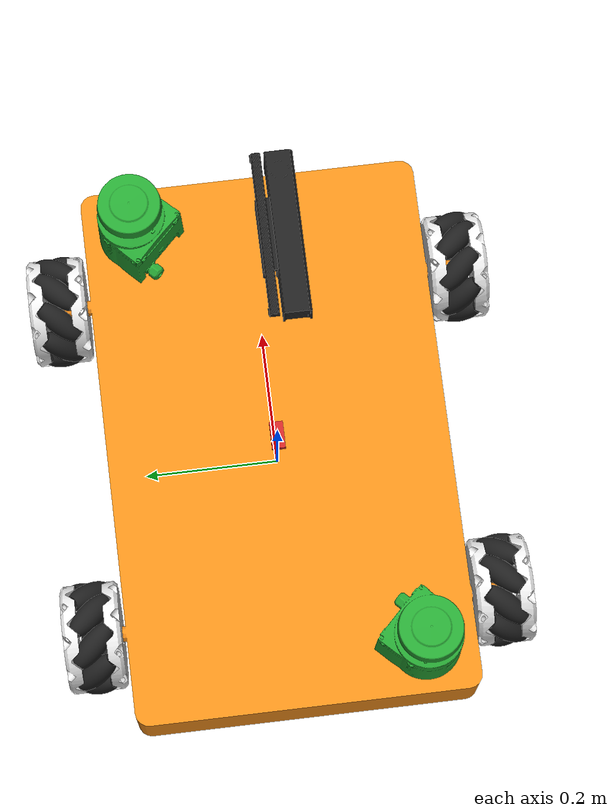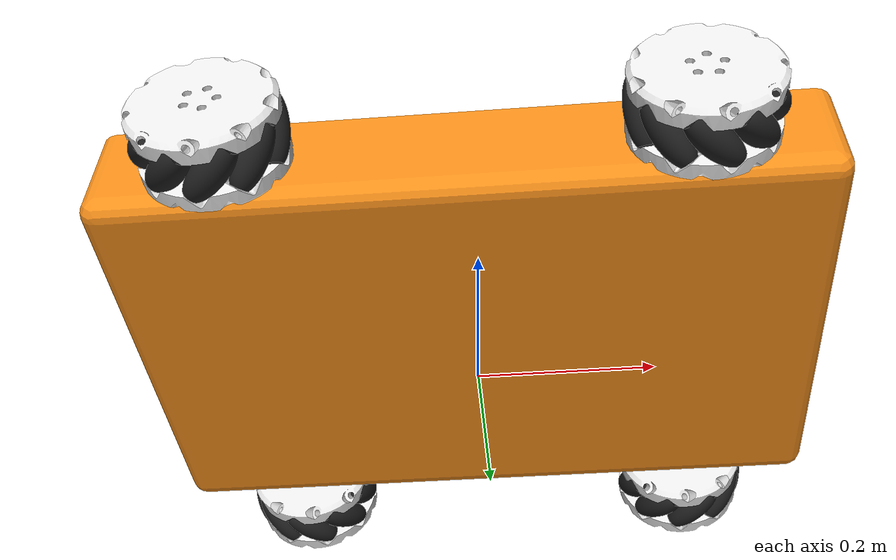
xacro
<?xml version="1.0"?>
<!-- Revolute-Revolute Manipulator -->
<robot name="zm_robot" xmlns:xacro="http://www.ros.org/wiki/xacro">

  <!-- Constants for robot dimensions -->
  <xacro:property name="wheel_rotationx" value="-1.5708"/>
  <xacro:property name="agv_base_h" value="0.081572" /> <!-- agv_base height -->
  <xacro:property name="wheel_before_L" value="0.25" /> <!-- wheel before L -->
  <xacro:property name="wheel_after_L" value="-0.25" /> <!-- wheel_after_L -->
  <xacro:property name="wheel_left_W" value="0.3" /> <!-- wheel left W -->
  <xacro:property name="wheel_right_W" value="-0.3" /> <!-- wheel right W -->

  <!-- roller position -->
  <xacro:property name="roller_1_y" value="0"/>
  <xacro:property name="roller_2_y" value="0.041781"/>
  <xacro:property name="roller_3_y" value="0.064012"/>
  <xacro:property name="roller_4_y" value="0.056291"/>
  <xacro:property name="roller_5_y" value="0.022231"/>
  <xacro:property name="roller_6_y" value="-0.022231"/>
  <xacro:property name="roller_7_y" value="-0.056291"/>
  <xacro:property name="roller_8_y" value="-0.064012"/>
  <xacro:property name="roller_9_y" value="-0.041781"/>
  <xacro:property name="roller_1_x" value="0.065"/>
  <xacro:property name="roller_2_x" value="0.049792"/>
  <xacro:property name="roller_3_x" value="0.011287"/>
  <xacro:property name="roller_4_x" value="-0.0325"/>
  <xacro:property name="roller_5_x" value="-0.06108"/>
  <xacro:property name="roller_6_x" value="-0.06108"/>
  <xacro:property name="roller_7_x" value="-0.0325"/>
  <xacro:property name="roller_8_x" value="0.011287"/>
  <xacro:property name="roller_9_x" value="0.049792"/>

  <!-- rollor friction -->
  <xacro:property name="roller_friction" value="0.4"/>
  <xacro:property name="roller_dampling" value="0"/>

  <!-- wheel friction -->
  <xacro:property name="roller_friction_wheel" value="0.2"/>
  <xacro:property name="roller_dampling_wheel" value="1.5"/>

  <!-- Import all Gazebo-customization elements, including Gazebo colors -->
  <xacro:include filename="$(find zm_robot_description)/urdf/zm_robot_pid.gazebo" />
  <!-- Import Rviz colors -->
  <xacro:include filename="$(find zm_robot_description)/urdf/materials.xacro" />
  <!-- Import rollor actuator -->
  <!--xacro:include filename="$(find zm_robot_description)/urdf/rollor_1.gazebo" /-->
  <!--xacro:include filename="$(find zm_robot_description)/urdf/rollor_2.gazebo" /-->
  <!--xacro:include filename="$(find zm_robot_description)/urdf/rollor_3.gazebo" /-->
  <!--xacro:include filename="$(find zm_robot_description)/urdf/rollor_4.gazebo" /-->

  <!-- Used for fixing robot to Gazebo 'base_link' -->
  <link name="base_footprint"/>

  <joint name="base_joint" type="fixed">
    <parent link="base_footprint"/>
    <child link="base_link"/>
    <origin xyz="0 0 ${agv_base_h}" rpy="0 0 0"/>
  </joint>

  <!-- Base Link -->
  <link name="base_link">
    <collision>
      <origin xyz="0 0 0" rpy="0 0 0"/>
      <geometry>
	<mesh filename="package://zm_robot_description/meshes/agv_base.stl" scale="0.01 0.01 0.01"/>
      </geometry>
    </collision>

    <visual>
      <origin xyz="0 0 0" rpy="0 0 0"/>
      <geometry>
	<mesh filename="package://zm_robot_description/meshes/agv_base.stl" scale="0.01 0.01 0.01"/>
      </geometry>
      <material name="orange"/>
    </visual>

    <inertial>
      <origin xyz="0 0 0" rpy="0 0 0"/>
      <mass value="29.964"/>
      <inertia
	  ixx="0.892684320" ixy="0.0" ixz="0.0"
	  iyy="1.966612482" iyz="0.0"
	  izz="2.677227828"/>
    </inertial>
  </link>

  <!-- wheel 1 -->
  <joint name="wheel_joint1" type="continuous">
    <parent link="base_link"/>
    <child link="wheel_1"/>
    <origin xyz="${wheel_after_L} ${wheel_left_W} 0" rpy="${wheel_rotationx} 0 0"/>
    <axis xyz="0 0 1"/>
    <dynamics damping="${roller_dampling_wheel}" friction="${roller_friction_wheel}"/>
  </joint>

  <link name="wheel_1">
    <collision>
      <origin xyz="0 0 0" rpy="0 0 0"/>
      <geometry>
	<mesh filename="package://zm_robot_description/meshes/mecanum_left_after.stl" scale="0.01 0.01 0.01"/>
      </geometry>
    </collision>

    <visual>
      <origin xyz="0 0 0" rpy="0 0 0"/>
      <geometry>
	<mesh filename="package://zm_robot_description/meshes/mecanum_left_after.stl" scale="0.01 0.01 0.01"/>
      </geometry>
      <material name="white"/>
    </visual>

    <inertial>
      <origin xyz="0 0 0" rpy="0 0 0"/>
      <mass value="1.7"/>
      <inertia
	  ixx="0.004248052" ixy="0.0" ixz="0.0"
	  iyy="0.004248045" iyz="0.0"
	  izz="0.004879970"/>
    </inertial>
  </link>

  <!-- roller_1_1 -->
  <joint name="roller_1_1_joint" type="fixed">
    <parent link="wheel_1"/>
    <child link="roller_1_1"/>
    <origin xyz="${roller_1_y} ${roller_1_x} 0" rpy="0.7854 0 1.5708"/>
    <axis xyz="0 0 1"/>
    <dynamics damping="${roller_dampling}" friction="${roller_friction}"/>
  </joint>

  <link name="roller_1_1">
    <collision>
      <origin xyz="0 0 0" rpy="0 0 0"/>
      <geometry>
	<mesh filename="package://zm_robot_description/meshes/mecanum_roller.stl" scale="0.01 0.01 0.01"/>
      </geometry>
    </collision>

    <visual>
      <origin xyz="0 0 0" rpy="0 0 0"/>
      <geometry>
	<mesh filename="package://zm_robot_description/meshes/mecanum_roller.stl" scale="0.01 0.01 0.01"/>
      </geometry>
      <material name="black"/>
    </visual>

    <inertial>
      <origin xyz="0 0 0" rpy="0 0 0"/>
      <mass value="0.124"/>
      <inertia
	  ixx="0.000051893" ixy="0.0" ixz="0.0"
	  iyy="0.000051893" iyz="0.0"
	  izz="0.000013891"/>
    </inertial>
  </link>

  <!-- roller_1_2 -->
  <joint name="roller_1_2_joint" type="fixed">
    <parent link="wheel_1"/>
    <child link="roller_1_2"/>
    <origin xyz="${roller_2_y} ${roller_2_x} 0" rpy="0.7854 0 0.8727"/>
    <axis xyz="0 0 1"/>
    <dynamics damping="${roller_dampling}" friction="${roller_friction}"/>
  </joint>

  <link name="roller_1_2">
    <collision>
      <origin xyz="0 0 0" rpy="0 0 0"/>
      <geometry>
	<mesh filename="package://zm_robot_description/meshes/mecanum_roller.stl" scale="0.01 0.01 0.01"/>
      </geometry>
    </collision>

    <visual>
      <origin xyz="0 0 0" rpy="0 0 0"/>
      <geometry>
	<mesh filename="package://zm_robot_description/meshes/mecanum_roller.stl" scale="0.01 0.01 0.01"/>
      </geometry>
      <material name="black"/>
    </visual>

    <inertial>
      <origin xyz="0 0 0" rpy="0 0 0"/>
      <mass value="0.124"/>
      <inertia
	  ixx="0.000051893" ixy="0.0" ixz="0.0"
	  iyy="0.000051893" iyz="0.0"
	  izz="0.000013891"/>
    </inertial>
  </link>

  <!-- roller_1_3 -->
  <joint name="roller_1_3_joint" type="fixed">
    <parent link="wheel_1"/>
    <child link="roller_1_3"/>
    <origin xyz="${roller_3_y} ${roller_3_x} 0" rpy="0.7854 0 0.1746"/>
    <axis xyz="0 0 1"/>
    <dynamics damping="${roller_dampling}" friction="${roller_friction}"/>
  </joint>

  <link name="roller_1_3">
    <collision>
      <origin xyz="0 0 0" rpy="0 0 0"/>
      <geometry>
	<mesh filename="package://zm_robot_description/meshes/mecanum_roller.stl" scale="0.01 0.01 0.01"/>
      </geometry>
    </collision>

    <visual>
      <origin xyz="0 0 0" rpy="0 0 0"/>
      <geometry>
	<mesh filename="package://zm_robot_description/meshes/mecanum_roller.stl" scale="0.01 0.01 0.01"/>
      </geometry>
      <material name="black"/>
    </visual>

    <inertial>
      <origin xyz="0 0 0" rpy="0 0 0"/>
      <mass value="0.124"/>
      <inertia
	  ixx="0.000051893" ixy="0.0" ixz="0.0"
	  iyy="0.000051893" iyz="0.0"
	  izz="0.000013891"/>
    </inertial>
  </link>

  <!-- roller_1_4 -->
  <joint name="roller_1_4_joint" type="fixed">
    <parent link="wheel_1"/>
    <child link="roller_1_4"/>
    <origin xyz="${roller_4_y} ${roller_4_x} 0" rpy="0.7854 0 -0.5235"/>
    <axis xyz="0 0 1"/>
    <dynamics damping="${roller_dampling}" friction="${roller_friction}"/>
  </joint>

  <link name="roller_1_4">
    <collision>
      <origin xyz="0 0 0" rpy="0 0 0"/>
      <geometry>
	<mesh filename="package://zm_robot_description/meshes/mecanum_roller.stl" scale="0.01 0.01 0.01"/>
      </geometry>
    </collision>

    <visual>
      <origin xyz="0 0 0" rpy="0 0 0"/>
      <geometry>
	<mesh filename="package://zm_robot_description/meshes/mecanum_roller.stl" scale="0.01 0.01 0.01"/>
      </geometry>
      <material name="black"/>
    </visual>

    <inertial>
      <origin xyz="0 0 0" rpy="0 0 0"/>
      <mass value="0.124"/>
      <inertia
	  ixx="0.000051893" ixy="0.0" ixz="0.0"
	  iyy="0.000051893" iyz="0.0"
	  izz="0.000013891"/>
    </inertial>
  </link>

  <!-- roller_1_5 -->
  <joint name="roller_1_5_joint" type="fixed">
    <parent link="wheel_1"/>
    <child link="roller_1_5"/>
    <origin xyz="${roller_5_y} ${roller_5_x} 0" rpy="0.7854 0 -1.2216"/>
    <axis xyz="0 0 1"/>
    <dynamics damping="${roller_dampling}" friction="${roller_friction}"/>
  </joint>

  <link name="roller_1_5">
    <collision>
      <origin xyz="0 0 0" rpy="0 0 0"/>
      <geometry>
	<mesh filename="package://zm_robot_description/meshes/mecanum_roller.stl" scale="0.01 0.01 0.01"/>
      </geometry>
    </collision>

    <visual>
      <origin xyz="0 0 0" rpy="0 0 0"/>
      <geometry>
	<mesh filename="package://zm_robot_description/meshes/mecanum_roller.stl" scale="0.01 0.01 0.01"/>
      </geometry>
      <material name="black"/>
    </visual>

    <inertial>
      <origin xyz="0 0 0" rpy="0 0 0"/>
      <mass value="0.124"/>
      <inertia
	  ixx="0.000051893" ixy="0.0" ixz="0.0"
	  iyy="0.000051893" iyz="0.0"
	  izz="0.000013891"/>
    </inertial>
  </link>

  <!-- roller_1_6 -->
  <joint name="roller_1_6_joint" type="fixed">
    <parent link="wheel_1"/>
    <child link="roller_1_6"/>
    <origin xyz="${roller_6_y} ${roller_6_x} 0" rpy="0.7854 0 4.3632"/>
    <axis xyz="0 0 1"/>
    <dynamics damping="${roller_dampling}" friction="${roller_friction}"/>
  </joint>

  <link name="roller_1_6">
    <collision>
      <origin xyz="0 0 0" rpy="0 0 0"/>
      <geometry>
	<mesh filename="package://zm_robot_description/meshes/mecanum_roller.stl" scale="0.01 0.01 0.01"/>
      </geometry>
    </collision>

    <visual>
      <origin xyz="0 0 0" rpy="0 0 0"/>
      <geometry>
	<mesh filename="package://zm_robot_description/meshes/mecanum_roller.stl" scale="0.01 0.01 0.01"/>
      </geometry>
      <material name="black"/>
    </visual>

    <inertial>
      <origin xyz="0 0 0" rpy="0 0 0"/>
      <mass value="0.124"/>
      <inertia
	  ixx="0.000051893" ixy="0.0" ixz="0.0"
	  iyy="0.000051893" iyz="0.0"
	  izz="0.000013891"/>
    </inertial>
  </link>

  <!-- roller_1_7 -->
  <joint name="roller_1_7_joint" type="fixed">
    <parent link="wheel_1"/>
    <child link="roller_1_7"/>
    <origin xyz="${roller_7_y} ${roller_7_x} 0" rpy="0.7854 0 3.6651"/>
    <axis xyz="0 0 1"/>
    <dynamics damping="${roller_dampling}" friction="${roller_friction}"/>
  </joint>

  <link name="roller_1_7">
    <collision>
      <origin xyz="0 0 0" rpy="0 0 0"/>
      <geometry>
	<mesh filename="package://zm_robot_description/meshes/mecanum_roller.stl" scale="0.01 0.01 0.01"/>
      </geometry>
    </collision>

    <visual>
      <origin xyz="0 0 0" rpy="0 0 0"/>
      <geometry>
	<mesh filename="package://zm_robot_description/meshes/mecanum_roller.stl" scale="0.01 0.01 0.01"/>
      </geometry>
      <material name="black"/>
    </visual>

    <inertial>
      <origin xyz="0 0 0" rpy="0 0 0"/>
      <mass value="0.124"/>
      <inertia
	  ixx="0.000051893" ixy="0.0" ixz="0.0"
	  iyy="0.000051893" iyz="0.0"
	  izz="0.000013891"/>
    </inertial>
  </link>

  <!-- roller_1_8 -->
  <joint name="roller_1_8_joint" type="fixed">
    <parent link="wheel_1"/>
    <child link="roller_1_8"/>
    <origin xyz="${roller_8_y} ${roller_8_x} 0" rpy="0.7854 0 2.967"/>
    <axis xyz="0 0 1"/>
    <dynamics damping="${roller_dampling}" friction="${roller_friction}"/>
  </joint>

  <link name="roller_1_8">
    <collision>
      <origin xyz="0 0 0" rpy="0 0 0"/>
      <geometry>
	<mesh filename="package://zm_robot_description/meshes/mecanum_roller.stl" scale="0.01 0.01 0.01"/>
      </geometry>
    </collision>

    <visual>
      <origin xyz="0 0 0" rpy="0 0 0"/>
      <geometry>
	<mesh filename="package://zm_robot_description/meshes/mecanum_roller.stl" scale="0.01 0.01 0.01"/>
      </geometry>
      <material name="black"/>
    </visual>

    <inertial>
      <origin xyz="0 0 0" rpy="0 0 0"/>
      <mass value="0.124"/>
      <inertia
	  ixx="0.000051893" ixy="0.0" ixz="0.0"
	  iyy="0.000051893" iyz="0.0"
	  izz="0.000013891"/>
    </inertial>
  </link>

  <!-- roller_1_9 -->
  <joint name="roller_1_9_joint" type="fixed">
    <parent link="wheel_1"/>
    <child link="roller_1_9"/>
    <origin xyz="${roller_9_y} ${roller_9_x} 0" rpy="0.7854 0 2.2689"/>
    <axis xyz="0 0 1"/>
    <dynamics damping="${roller_dampling}" friction="${roller_friction}"/>
  </joint>

  <link name="roller_1_9">
    <collision>
      <origin xyz="0 0 0" rpy="0 0 0"/>
      <geometry>
	<mesh filename="package://zm_robot_description/meshes/mecanum_roller.stl" scale="0.01 0.01 0.01"/>
      </geometry>
    </collision>

    <visual>
      <origin xyz="0 0 0" rpy="0 0 0"/>
      <geometry>
	<mesh filename="package://zm_robot_description/meshes/mecanum_roller.stl" scale="0.01 0.01 0.01"/>
      </geometry>
      <material name="black"/>
    </visual>

    <inertial>
      <origin xyz="0 0 0" rpy="0 0 0"/>
      <mass value="0.124"/>
      <inertia
	  ixx="0.000051893" ixy="0.0" ixz="0.0"
	  iyy="0.000051893" iyz="0.0"
	  izz="0.000013891"/>
    </inertial>
  </link>

  <!-- wheel 2 -->
  <joint name="wheel_joint2" type="continuous">
    <parent link="base_link"/>
    <child link="wheel_2"/>
    <origin xyz="${wheel_before_L} ${wheel_left_W} 0" rpy="${wheel_rotationx} 0 0"/>
    <axis xyz="0 0 1"/>
    <dynamics damping="${roller_dampling_wheel}" friction="${roller_friction_wheel}"/>
  </joint>

  <link name="wheel_2">
    <collision>
      <origin xyz="0 0 0" rpy="0 0 0"/>
      <geometry>
	<mesh filename="package://zm_robot_description/meshes/mecanum_left_before.stl" scale="0.01 0.01 0.01"/>
      </geometry>
    </collision>

    <visual>
      <origin xyz="0 0 0" rpy="0 0 0"/>
      <geometry>
	<mesh filename="package://zm_robot_description/meshes/mecanum_left_before.stl" scale="0.01 0.01 0.01"/>
      </geometry>
      <material name="white"/>
    </visual>

    <inertial>
      <origin xyz="0 0 0" rpy="0 0 0"/>
      <mass value="1.7"/>
      <inertia
	  ixx="0.004248052" ixy="0.0" ixz="0.0"
	  iyy="0.004248045" iyz="0.0"
	  izz="0.004879970"/>
    </inertial>
  </link>

  <!-- roller_2_1 -->
  <joint name="roller_2_1_joint" type="fixed">
    <parent link="wheel_2"/>
    <child link="roller_2_1"/>
    <origin xyz="${roller_1_x} ${roller_1_y} 0" rpy="-0.7854 0 0"/>
    <axis xyz="0 0 1"/>
    <dynamics damping="${roller_dampling}" friction="${roller_friction}"/>
  </joint>

  <link name="roller_2_1">
    <collision>
      <origin xyz="0 0 0" rpy="0 0 0"/>
      <geometry>
	<mesh filename="package://zm_robot_description/meshes/mecanum_roller.stl" scale="0.01 0.01 0.01"/>
      </geometry>
    </collision>

    <visual>
      <origin xyz="0 0 0" rpy="0 0 0"/>
      <geometry>
	<mesh filename="package://zm_robot_description/meshes/mecanum_roller.stl" scale="0.01 0.01 0.01"/>
      </geometry>
      <material name="black"/>
    </visual>

    <inertial>
      <origin xyz="0 0 0" rpy="0 0 0"/>
      <mass value="0.124"/>
      <inertia
	  ixx="0.000051893" ixy="0.0" ixz="0.0"
	  iyy="0.000051893" iyz="0.0"
	  izz="0.000013891"/>
    </inertial>
  </link>

  <!-- roller_2_2 -->
  <joint name="roller_2_2_joint" type="fixed">
    <parent link="wheel_2"/>
    <child link="roller_2_2"/>
    <origin xyz="${roller_2_x} ${roller_2_y} 0" rpy="-0.7854 0 0.6981"/>
    <axis xyz="0 0 1"/>
    <dynamics damping="${roller_dampling}" friction="${roller_friction}"/>
  </joint>

  <link name="roller_2_2">
    <collision>
      <origin xyz="0 0 0" rpy="0 0 0"/>
      <geometry>
	<mesh filename="package://zm_robot_description/meshes/mecanum_roller.stl" scale="0.01 0.01 0.01"/>
      </geometry>
    </collision>

    <visual>
      <origin xyz="0 0 0" rpy="0 0 0"/>
      <geometry>
	<mesh filename="package://zm_robot_description/meshes/mecanum_roller.stl" scale="0.01 0.01 0.01"/>
      </geometry>
      <material name="black"/>
    </visual>

    <inertial>
      <origin xyz="0 0 0" rpy="0 0 0"/>
      <mass value="0.124"/>
      <inertia
	  ixx="0.000051893" ixy="0.0" ixz="0.0"
	  iyy="0.000051893" iyz="0.0"
	  izz="0.000013891"/>
    </inertial>
  </link>

  <!-- roller_2_3 -->
  <joint name="roller_2_3_joint" type="fixed">
    <parent link="wheel_2"/>
    <child link="roller_2_3"/>
    <origin xyz="${roller_3_x} ${roller_3_y} 0" rpy="-0.7854 0 1.3962"/>
    <axis xyz="0 0 1"/>
    <dynamics damping="${roller_dampling}" friction="${roller_friction}"/>
  </joint>

  <link name="roller_2_3">
    <collision>
      <origin xyz="0 0 0" rpy="0 0 0"/>
      <geometry>
	<mesh filename="package://zm_robot_description/meshes/mecanum_roller.stl" scale="0.01 0.01 0.01"/>
      </geometry>
    </collision>

    <visual>
      <origin xyz="0 0 0" rpy="0 0 0"/>
      <geometry>
	<mesh filename="package://zm_robot_description/meshes/mecanum_roller.stl" scale="0.01 0.01 0.01"/>
      </geometry>
      <material name="black"/>
    </visual>

    <inertial>
      <origin xyz="0 0 0" rpy="0 0 0"/>
      <mass value="0.124"/>
      <inertia
	  ixx="0.000051893" ixy="0.0" ixz="0.0"
	  iyy="0.000051893" iyz="0.0"
	  izz="0.000013891"/>
    </inertial>
  </link>

  <!-- roller_2_4 -->
  <joint name="roller_2_4_joint" type="fixed">
    <parent link="wheel_2"/>
    <child link="roller_2_4"/>
    <origin xyz="${roller_4_x} ${roller_4_y} 0" rpy="-0.7854 0 2.0943"/>
    <axis xyz="0 0 1"/>
    <dynamics damping="${roller_dampling}" friction="${roller_friction}"/>
  </joint>

  <link name="roller_2_4">
    <collision>
      <origin xyz="0 0 0" rpy="0 0 0"/>
      <geometry>
	<mesh filename="package://zm_robot_description/meshes/mecanum_roller.stl" scale="0.01 0.01 0.01"/>
      </geometry>
    </collision>

    <visual>
      <origin xyz="0 0 0" rpy="0 0 0"/>
      <geometry>
	<mesh filename="package://zm_robot_description/meshes/mecanum_roller.stl" scale="0.01 0.01 0.01"/>
      </geometry>
      <material name="black"/>
    </visual>

    <inertial>
      <origin xyz="0 0 0" rpy="0 0 0"/>
      <mass value="0.124"/>
      <inertia
	  ixx="0.000051893" ixy="0.0" ixz="0.0"
	  iyy="0.000051893" iyz="0.0"
	  izz="0.000013891"/>
    </inertial>
  </link>

  <!-- roller_2_5 -->
  <joint name="roller_2_5_joint" type="fixed">
    <parent link="wheel_2"/>
    <child link="roller_2_5"/>
    <origin xyz="${roller_5_x} ${roller_5_y} 0" rpy="-0.7854 0 2.7924"/>
    <axis xyz="0 0 1"/>
    <dynamics damping="${roller_dampling}" friction="${roller_friction}"/>
  </joint>

  <link name="roller_2_5">
    <collision>
      <origin xyz="0 0 0" rpy="0 0 0"/>
      <geometry>
	<mesh filename="package://zm_robot_description/meshes/mecanum_roller.stl" scale="0.01 0.01 0.01"/>
      </geometry>
    </collision>

    <visual>
      <origin xyz="0 0 0" rpy="0 0 0"/>
      <geometry>
	<mesh filename="package://zm_robot_description/meshes/mecanum_roller.stl" scale="0.01 0.01 0.01"/>
      </geometry>
      <material name="black"/>
    </visual>

    <inertial>
      <origin xyz="0 0 0" rpy="0 0 0"/>
      <mass value="0.124"/>
      <inertia
	  ixx="0.000051893" ixy="0.0" ixz="0.0"
	  iyy="0.000051893" iyz="0.0"
	  izz="0.000013891"/>
    </inertial>
  </link>

  <!-- roller_2_6 -->
  <joint name="roller_2_6_joint" type="fixed">
    <parent link="wheel_2"/>
    <child link="roller_2_6"/>
    <origin xyz="${roller_6_x} ${roller_6_y} 0" rpy="-0.7854 0 -2.7924"/>
    <axis xyz="0 0 1"/>
    <dynamics damping="${roller_dampling}" friction="${roller_friction}"/>
  </joint>

  <link name="roller_2_6">
    <collision>
      <origin xyz="0 0 0" rpy="0 0 0"/>
      <geometry>
	<mesh filename="package://zm_robot_description/meshes/mecanum_roller.stl" scale="0.01 0.01 0.01"/>
      </geometry>
    </collision>

    <visual>
      <origin xyz="0 0 0" rpy="0 0 0"/>
      <geometry>
	<mesh filename="package://zm_robot_description/meshes/mecanum_roller.stl" scale="0.01 0.01 0.01"/>
      </geometry>
      <material name="black"/>
    </visual>

    <inertial>
      <origin xyz="0 0 0" rpy="0 0 0"/>
      <mass value="0.124"/>
      <inertia
	  ixx="0.000051893" ixy="0.0" ixz="0.0"
	  iyy="0.000051893" iyz="0.0"
	  izz="0.000013891"/>
    </inertial>
  </link>

  <!-- roller_2_7 -->
  <joint name="roller_2_7_joint" type="fixed">
    <parent link="wheel_2"/>
    <child link="roller_2_7"/>
    <origin xyz="${roller_7_x} ${roller_7_y} 0" rpy="-0.7854 0 -2.0943"/>
    <axis xyz="0 0 1"/>
    <dynamics damping="${roller_dampling}" friction="${roller_friction}"/>
  </joint>

  <link name="roller_2_7">
    <collision>
      <origin xyz="0 0 0" rpy="0 0 0"/>
      <geometry>
	<mesh filename="package://zm_robot_description/meshes/mecanum_roller.stl" scale="0.01 0.01 0.01"/>
      </geometry>
    </collision>

    <visual>
      <origin xyz="0 0 0" rpy="0 0 0"/>
      <geometry>
	<mesh filename="package://zm_robot_description/meshes/mecanum_roller.stl" scale="0.01 0.01 0.01"/>
      </geometry>
      <material name="black"/>
    </visual>

    <inertial>
      <origin xyz="0 0 0" rpy="0 0 0"/>
      <mass value="0.124"/>
      <inertia
	  ixx="0.000051893" ixy="0.0" ixz="0.0"
	  iyy="0.000051893" iyz="0.0"
	  izz="0.000013891"/>
    </inertial>
  </link>

  <!-- roller_2_8 -->
  <joint name="roller_2_8_joint" type="fixed">
    <parent link="wheel_2"/>
    <child link="roller_2_8"/>
    <origin xyz="${roller_8_x} ${roller_8_y} 0" rpy="-0.7854 0 -1.3962"/>
    <axis xyz="0 0 1"/>
    <dynamics damping="${roller_dampling}" friction="${roller_friction}"/>
  </joint>

  <link name="roller_2_8">
    <collision>
      <origin xyz="0 0 0" rpy="0 0 0"/>
      <geometry>
	<mesh filename="package://zm_robot_description/meshes/mecanum_roller.stl" scale="0.01 0.01 0.01"/>
      </geometry>
    </collision>

    <visual>
      <origin xyz="0 0 0" rpy="0 0 0"/>
      <geometry>
	<mesh filename="package://zm_robot_description/meshes/mecanum_roller.stl" scale="0.01 0.01 0.01"/>
      </geometry>
      <material name="black"/>
    </visual>

    <inertial>
      <origin xyz="0 0 0" rpy="0 0 0"/>
      <mass value="0.124"/>
      <inertia
	  ixx="0.000051893" ixy="0.0" ixz="0.0"
	  iyy="0.000051893" iyz="0.0"
	  izz="0.000013891"/>
    </inertial>
  </link>

  <!-- roller_2_9 -->
  <joint name="roller_2_9_joint" type="fixed">
    <parent link="wheel_2"/>
    <child link="roller_2_9"/>
    <origin xyz="${roller_9_x} ${roller_9_y} 0" rpy="-0.7854 0 -0.6981"/>
    <axis xyz="0 0 1"/>
    <dynamics damping="${roller_dampling}" friction="${roller_friction}"/>
  </joint>

  <link name="roller_2_9">
    <collision>
      <origin xyz="0 0 0" rpy="0 0 0"/>
      <geometry>
	<mesh filename="package://zm_robot_description/meshes/mecanum_roller.stl" scale="0.01 0.01 0.01"/>
      </geometry>
    </collision>

    <visual>
      <origin xyz="0 0 0" rpy="0 0 0"/>
      <geometry>
	<mesh filename="package://zm_robot_description/meshes/mecanum_roller.stl" scale="0.01 0.01 0.01"/>
      </geometry>
      <material name="black"/>
    </visual>

    <inertial>
      <origin xyz="0 0 0" rpy="0 0 0"/>
      <mass value="0.124"/>
      <inertia
	  ixx="0.000051893" ixy="0.0" ixz="0.0"
	  iyy="0.000051893" iyz="0.0"
	  izz="0.000013891"/>
    </inertial>
  </link>

  <!-- wheel 3 -->
  <joint name="wheel_joint3" type="continuous">
    <parent link="base_link"/>
    <child link="wheel_3"/>
    <origin xyz="${wheel_before_L} ${wheel_right_W} 0" rpy="${wheel_rotationx} 0 0"/>
    <axis xyz="0 0 1"/>
    <dynamics damping="${roller_dampling_wheel}" friction="${roller_friction_wheel}"/>
  </joint>

  <link name="wheel_3">
    <collision>
      <origin xyz="0 0 0" rpy="0 0 0"/>
      <geometry>
	<mesh filename="package://zm_robot_description/meshes/mecanum_right_before.stl" scale="0.01 0.01 0.01"/>
      </geometry>
    </collision>

    <visual>
      <origin xyz="0 0 0" rpy="0 0 0"/>
      <geometry>
	<mesh filename="package://zm_robot_description/meshes/mecanum_right_before.stl" scale="0.01 0.01 0.01"/>
      </geometry>
      <material name="white"/>
    </visual>

    <inertial>
      <origin xyz="0 0 0" rpy="0 0 0"/>
      <mass value="1.7"/>
      <inertia
	  ixx="0.004248052" ixy="0.0" ixz="0.0"
	  iyy="0.004248045" iyz="0.0"
	  izz="0.004879970"/>
    </inertial>
  </link>

  <!-- roller_3_1 -->
  <joint name="roller_3_1_joint" type="fixed">
    <parent link="wheel_3"/>
    <child link="roller_3_1"/>
    <origin xyz="${roller_1_y} ${roller_1_x} 0" rpy="0.7854 0 1.5708"/>
    <axis xyz="0 0 1"/>
    <dynamics damping="${roller_dampling}" friction="${roller_friction}"/>
  </joint>

  <link name="roller_3_1">
    <collision>
      <origin xyz="0 0 0" rpy="0 0 0"/>
      <geometry>
	<mesh filename="package://zm_robot_description/meshes/mecanum_roller.stl" scale="0.01 0.01 0.01"/>
      </geometry>
    </collision>

    <visual>
      <origin xyz="0 0 0" rpy="0 0 0"/>
      <geometry>
	<mesh filename="package://zm_robot_description/meshes/mecanum_roller.stl" scale="0.01 0.01 0.01"/>
      </geometry>
      <material name="black"/>
    </visual>

    <inertial>
      <origin xyz="0 0 0" rpy="0 0 0"/>
      <mass value="0.124"/>
      <inertia
	  ixx="0.000051893" ixy="0.0" ixz="0.0"
	  iyy="0.000051893" iyz="0.0"
	  izz="0.000013891"/>
    </inertial>
  </link>

  <!-- roller_3_2 -->
  <joint name="roller_3_2_joint" type="fixed">
    <parent link="wheel_3"/>
    <child link="roller_3_2"/>
    <origin xyz="${roller_2_y} ${roller_2_x} 0" rpy="0.7854 0 0.8727"/>
    <axis xyz="0 0 1"/>
    <dynamics damping="${roller_dampling}" friction="${roller_friction}"/>
  </joint>

  <link name="roller_3_2">
    <collision>
      <origin xyz="0 0 0" rpy="0 0 0"/>
      <geometry>
	<mesh filename="package://zm_robot_description/meshes/mecanum_roller.stl" scale="0.01 0.01 0.01"/>
      </geometry>
    </collision>

    <visual>
      <origin xyz="0 0 0" rpy="0 0 0"/>
      <geometry>
	<mesh filename="package://zm_robot_description/meshes/mecanum_roller.stl" scale="0.01 0.01 0.01"/>
      </geometry>
      <material name="black"/>
    </visual>

    <inertial>
      <origin xyz="0 0 0" rpy="0 0 0"/>
      <mass value="0.124"/>
      <inertia
	  ixx="0.000051893" ixy="0.0" ixz="0.0"
	  iyy="0.000051893" iyz="0.0"
	  izz="0.000013891"/>
    </inertial>
  </link>

  <!-- roller_3_3 -->
  <joint name="roller_3_3_joint" type="fixed">
    <parent link="wheel_3"/>
    <child link="roller_3_3"/>
    <origin xyz="${roller_3_y} ${roller_3_x} 0" rpy="0.7854 0 0.1746"/>
    <axis xyz="0 0 1"/>
    <dynamics damping="${roller_dampling}" friction="${roller_friction}"/>
  </joint>

  <link name="roller_3_3">
    <collision>
      <origin xyz="0 0 0" rpy="0 0 0"/>
      <geometry>
	<mesh filename="package://zm_robot_description/meshes/mecanum_roller.stl" scale="0.01 0.01 0.01"/>
      </geometry>
    </collision>

    <visual>
      <origin xyz="0 0 0" rpy="0 0 0"/>
      <geometry>
	<mesh filename="package://zm_robot_description/meshes/mecanum_roller.stl" scale="0.01 0.01 0.01"/>
      </geometry>
      <material name="black"/>
    </visual>

    <inertial>
      <origin xyz="0 0 0" rpy="0 0 0"/>
      <mass value="0.124"/>
      <inertia
	  ixx="0.000051893" ixy="0.0" ixz="0.0"
	  iyy="0.000051893" iyz="0.0"
	  izz="0.000013891"/>
    </inertial>
  </link>

  <!-- roller_3_4 -->
  <joint name="roller_3_4_joint" type="fixed">
    <parent link="wheel_3"/>
    <child link="roller_3_4"/>
    <origin xyz="${roller_4_y} ${roller_4_x} 0" rpy="0.7854 0 -0.5235"/>
    <axis xyz="0 0 1"/>
    <dynamics damping="${roller_dampling}" friction="${roller_friction}"/>
  </joint>

  <link name="roller_3_4">
    <collision>
      <origin xyz="0 0 0" rpy="0 0 0"/>
      <geometry>
	<mesh filename="package://zm_robot_description/meshes/mecanum_roller.stl" scale="0.01 0.01 0.01"/>
      </geometry>
    </collision>

    <visual>
      <origin xyz="0 0 0" rpy="0 0 0"/>
      <geometry>
	<mesh filename="package://zm_robot_description/meshes/mecanum_roller.stl" scale="0.01 0.01 0.01"/>
      </geometry>
      <material name="black"/>
    </visual>

    <inertial>
      <origin xyz="0 0 0" rpy="0 0 0"/>
      <mass value="0.124"/>
      <inertia
	  ixx="0.000051893" ixy="0.0" ixz="0.0"
	  iyy="0.000051893" iyz="0.0"
	  izz="0.000013891"/>
    </inertial>
  </link>

  <!-- roller_3_5 -->
  <joint name="roller_3_5_joint" type="fixed">
    <parent link="wheel_3"/>
    <child link="roller_3_5"/>
    <origin xyz="${roller_5_y} ${roller_5_x} 0" rpy="0.7854 0 -1.2216"/>
    <axis xyz="0 0 1"/>
    <dynamics damping="${roller_dampling}" friction="${roller_friction}"/>
  </joint>

  <link name="roller_3_5">
    <collision>
      <origin xyz="0 0 0" rpy="0 0 0"/>
      <geometry>
	<mesh filename="package://zm_robot_description/meshes/mecanum_roller.stl" scale="0.01 0.01 0.01"/>
      </geometry>
    </collision>

    <visual>
      <origin xyz="0 0 0" rpy="0 0 0"/>
      <geometry>
	<mesh filename="package://zm_robot_description/meshes/mecanum_roller.stl" scale="0.01 0.01 0.01"/>
      </geometry>
      <material name="black"/>
    </visual>

    <inertial>
      <origin xyz="0 0 0" rpy="0 0 0"/>
      <mass value="0.124"/>
      <inertia
	  ixx="0.000051893" ixy="0.0" ixz="0.0"
	  iyy="0.000051893" iyz="0.0"
	  izz="0.000013891"/>
    </inertial>
  </link>

  <!-- roller_3_6 -->
  <joint name="roller_3_6_joint" type="fixed">
    <parent link="wheel_3"/>
    <child link="roller_3_6"/>
    <origin xyz="${roller_6_y} ${roller_6_x} 0" rpy="0.7854 0 4.3632"/>
    <axis xyz="0 0 1"/>
    <dynamics damping="${roller_dampling}" friction="${roller_friction}"/>
  </joint>

  <link name="roller_3_6">
    <collision>
      <origin xyz="0 0 0" rpy="0 0 0"/>
      <geometry>
	<mesh filename="package://zm_robot_description/meshes/mecanum_roller.stl" scale="0.01 0.01 0.01"/>
      </geometry>
    </collision>

    <visual>
      <origin xyz="0 0 0" rpy="0 0 0"/>
      <geometry>
	<mesh filename="package://zm_robot_description/meshes/mecanum_roller.stl" scale="0.01 0.01 0.01"/>
      </geometry>
      <material name="black"/>
    </visual>

    <inertial>
      <origin xyz="0 0 0" rpy="0 0 0"/>
      <mass value="0.124"/>
      <inertia
	  ixx="0.000051893" ixy="0.0" ixz="0.0"
	  iyy="0.000051893" iyz="0.0"
	  izz="0.000013891"/>
    </inertial>
  </link>

  <!-- roller_3_7 -->
  <joint name="roller_3_7_joint" type="fixed">
    <parent link="wheel_3"/>
    <child link="roller_3_7"/>
    <origin xyz="${roller_7_y} ${roller_7_x} 0" rpy="0.7854 0 3.6651"/>
    <axis xyz="0 0 1"/>
    <dynamics damping="${roller_dampling}" friction="${roller_friction}"/>
  </joint>

  <link name="roller_3_7">
    <collision>
      <origin xyz="0 0 0" rpy="0 0 0"/>
      <geometry>
	<mesh filename="package://zm_robot_description/meshes/mecanum_roller.stl" scale="0.01 0.01 0.01"/>
      </geometry>
    </collision>

    <visual>
      <origin xyz="0 0 0" rpy="0 0 0"/>
      <geometry>
	<mesh filename="package://zm_robot_description/meshes/mecanum_roller.stl" scale="0.01 0.01 0.01"/>
      </geometry>
      <material name="black"/>
    </visual>

    <inertial>
      <origin xyz="0 0 0" rpy="0 0 0"/>
      <mass value="0.124"/>
      <inertia
	  ixx="0.000051893" ixy="0.0" ixz="0.0"
	  iyy="0.000051893" iyz="0.0"
	  izz="0.000013891"/>
    </inertial>
  </link>

  <!-- roller_3_8 -->
  <joint name="roller_3_8_joint" type="fixed">
    <parent link="wheel_3"/>
    <child link="roller_3_8"/>
    <origin xyz="${roller_8_y} ${roller_8_x} 0" rpy="0.7854 0 2.967"/>
    <axis xyz="0 0 1"/>
    <dynamics damping="${roller_dampling}" friction="${roller_friction}"/>
  </joint>

  <link name="roller_3_8">
    <collision>
      <origin xyz="0 0 0" rpy="0 0 0"/>
      <geometry>
	<mesh filename="package://zm_robot_description/meshes/mecanum_roller.stl" scale="0.01 0.01 0.01"/>
      </geometry>
    </collision>

    <visual>
      <origin xyz="0 0 0" rpy="0 0 0"/>
      <geometry>
	<mesh filename="package://zm_robot_description/meshes/mecanum_roller.stl" scale="0.01 0.01 0.01"/>
      </geometry>
      <material name="black"/>
    </visual>

    <inertial>
      <origin xyz="0 0 0" rpy="0 0 0"/>
      <mass value="0.124"/>
      <inertia
	  ixx="0.000051893" ixy="0.0" ixz="0.0"
	  iyy="0.000051893" iyz="0.0"
	  izz="0.000013891"/>
    </inertial>
  </link>

  <!-- roller_3_9 -->
  <joint name="roller_3_9_joint" type="fixed">
    <parent link="wheel_3"/>
    <child link="roller_3_9"/>
    <origin xyz="${roller_9_y} ${roller_9_x} 0" rpy="0.7854 0 2.2689"/>
    <axis xyz="0 0 1"/>
    <dynamics damping="${roller_dampling}" friction="${roller_friction}"/>
  </joint>

  <link name="roller_3_9">
    <collision>
      <origin xyz="0 0 0" rpy="0 0 0"/>
      <geometry>
	<mesh filename="package://zm_robot_description/meshes/mecanum_roller.stl" scale="0.01 0.01 0.01"/>
      </geometry>
    </collision>

    <visual>
      <origin xyz="0 0 0" rpy="0 0 0"/>
      <geometry>
	<mesh filename="package://zm_robot_description/meshes/mecanum_roller.stl" scale="0.01 0.01 0.01"/>
      </geometry>
      <material name="black"/>
    </visual>

    <inertial>
      <origin xyz="0 0 0" rpy="0 0 0"/>
      <mass value="0.124"/>
      <inertia
	  ixx="0.000051893" ixy="0.0" ixz="0.0"
	  iyy="0.000051893" iyz="0.0"
	  izz="0.000013891"/>
    </inertial>
  </link>

  <!-- wheel 4 -->
  <joint name="wheel_joint4" type="continuous">
    <parent link="base_link"/>
    <child link="wheel_4"/>
    <origin xyz="${wheel_after_L} ${wheel_right_W} 0" rpy="${wheel_rotationx} 0 0"/>
    <axis xyz="0 0 1"/>
    <dynamics damping="${roller_dampling_wheel}" friction="${roller_friction_wheel}"/>
  </joint>

  <link name="wheel_4">
    <collision>
      <origin xyz="0 0 0" rpy="0 0 0"/>
      <geometry>
	<mesh filename="package://zm_robot_description/meshes/mecanum_right_after.stl" scale="0.01 0.01 0.01"/>
      </geometry>
    </collision>

    <visual>
      <origin xyz="0 0 0" rpy="0 0 0"/>
      <geometry>
	<mesh filename="package://zm_robot_description/meshes/mecanum_right_after.stl" scale="0.01 0.01 0.01"/>
      </geometry>
      <material name="white"/>
    </visual>

    <inertial>
      <origin xyz="0 0 0" rpy="0 0 0"/>
      <mass value="1.7"/>
      <inertia
	  ixx="0.004248052" ixy="0.0" ixz="0.0"
	  iyy="0.004248045" iyz="0.0"
	  izz="0.004879970"/>
    </inertial>
  </link>

  <!-- roller_4_1 -->
  <joint name="roller_4_1_joint" type="fixed">
    <parent link="wheel_4"/>
    <child link="roller_4_1"/>
    <origin xyz="${roller_1_x} ${roller_1_y} 0" rpy="-0.7854 0 0"/>
    <axis xyz="0 0 1"/>
    <dynamics damping="${roller_dampling}" friction="${roller_friction}"/>
  </joint>

  <link name="roller_4_1">
    <collision>
      <origin xyz="0 0 0" rpy="0 0 0"/>
      <geometry>
	<mesh filename="package://zm_robot_description/meshes/mecanum_roller.stl" scale="0.01 0.01 0.01"/>
      </geometry>
    </collision>

    <visual>
      <origin xyz="0 0 0" rpy="0 0 0"/>
      <geometry>
	<mesh filename="package://zm_robot_description/meshes/mecanum_roller.stl" scale="0.01 0.01 0.01"/>
      </geometry>
      <material name="black"/>
    </visual>

    <inertial>
      <origin xyz="0 0 0" rpy="0 0 0"/>
      <mass value="0.124"/>
      <inertia
	  ixx="0.000051893" ixy="0.0" ixz="0.0"
	  iyy="0.000051893" iyz="0.0"
	  izz="0.000013891"/>
    </inertial>
  </link>

  <!-- roller_4_2 -->
  <joint name="roller_4_2_joint" type="fixed">
    <parent link="wheel_4"/>
    <child link="roller_4_2"/>
    <origin xyz="${roller_2_x} ${roller_2_y} 0" rpy="-0.7854 0 0.6981"/>
    <axis xyz="0 0 1"/>
    <dynamics damping="${roller_dampling}" friction="${roller_friction}"/>
  </joint>

  <link name="roller_4_2">
    <collision>
      <origin xyz="0 0 0" rpy="0 0 0"/>
      <geometry>
	<mesh filename="package://zm_robot_description/meshes/mecanum_roller.stl" scale="0.01 0.01 0.01"/>
      </geometry>
    </collision>

    <visual>
      <origin xyz="0 0 0" rpy="0 0 0"/>
      <geometry>
	<mesh filename="package://zm_robot_description/meshes/mecanum_roller.stl" scale="0.01 0.01 0.01"/>
      </geometry>
      <material name="black"/>
    </visual>

    <inertial>
      <origin xyz="0 0 0" rpy="0 0 0"/>
      <mass value="0.124"/>
      <inertia
	  ixx="0.000051893" ixy="0.0" ixz="0.0"
	  iyy="0.000051893" iyz="0.0"
	  izz="0.000013891"/>
    </inertial>
  </link>

  <!-- roller_4_3 -->
  <joint name="roller_4_3_joint" type="fixed">
    <parent link="wheel_4"/>
    <child link="roller_4_3"/>
    <origin xyz="${roller_3_x} ${roller_3_y} 0" rpy="-0.7854 0 1.3962"/>
    <axis xyz="0 0 1"/>
    <dynamics damping="${roller_dampling}" friction="${roller_friction}"/>
  </joint>

  <link name="roller_4_3">
    <collision>
      <origin xyz="0 0 0" rpy="0 0 0"/>
      <geometry>
	<mesh filename="package://zm_robot_description/meshes/mecanum_roller.stl" scale="0.01 0.01 0.01"/>
      </geometry>
    </collision>

    <visual>
      <origin xyz="0 0 0" rpy="0 0 0"/>
      <geometry>
	<mesh filename="package://zm_robot_description/meshes/mecanum_roller.stl" scale="0.01 0.01 0.01"/>
      </geometry>
      <material name="black"/>
    </visual>

    <inertial>
      <origin xyz="0 0 0" rpy="0 0 0"/>
      <mass value="0.124"/>
      <inertia
	  ixx="0.000051893" ixy="0.0" ixz="0.0"
	  iyy="0.000051893" iyz="0.0"
	  izz="0.000013891"/>
    </inertial>
  </link>

  <!-- roller_4_4 -->
  <joint name="roller_4_4_joint" type="fixed">
    <parent link="wheel_4"/>
    <child link="roller_4_4"/>
    <origin xyz="${roller_4_x} ${roller_4_y} 0" rpy="-0.7854 0 2.0943"/>
    <axis xyz="0 0 1"/>
    <dynamics damping="${roller_dampling}" friction="${roller_friction}"/>
  </joint>

  <link name="roller_4_4">
    <collision>
      <origin xyz="0 0 0" rpy="0 0 0"/>
      <geometry>
	<mesh filename="package://zm_robot_description/meshes/mecanum_roller.stl" scale="0.01 0.01 0.01"/>
      </geometry>
    </collision>

    <visual>
      <origin xyz="0 0 0" rpy="0 0 0"/>
      <geometry>
	<mesh filename="package://zm_robot_description/meshes/mecanum_roller.stl" scale="0.01 0.01 0.01"/>
      </geometry>
      <material name="black"/>
    </visual>

    <inertial>
      <origin xyz="0 0 0" rpy="0 0 0"/>
      <mass value="0.124"/>
      <inertia
	  ixx="0.000051893" ixy="0.0" ixz="0.0"
	  iyy="0.000051893" iyz="0.0"
	  izz="0.000013891"/>
    </inertial>
  </link>

  <!-- roller_4_5 -->
  <joint name="roller_4_5_joint" type="fixed">
    <parent link="wheel_4"/>
    <child link="roller_4_5"/>
    <origin xyz="${roller_5_x} ${roller_5_y} 0" rpy="-0.7854 0 2.7924"/>
    <axis xyz="0 0 1"/>
    <dynamics damping="${roller_dampling}" friction="${roller_friction}"/>
  </joint>

  <link name="roller_4_5">
    <collision>
      <origin xyz="0 0 0" rpy="0 0 0"/>
      <geometry>
	<mesh filename="package://zm_robot_description/meshes/mecanum_roller.stl" scale="0.01 0.01 0.01"/>
      </geometry>
    </collision>

    <visual>
      <origin xyz="0 0 0" rpy="0 0 0"/>
      <geometry>
	<mesh filename="package://zm_robot_description/meshes/mecanum_roller.stl" scale="0.01 0.01 0.01"/>
      </geometry>
      <material name="black"/>
    </visual>

    <inertial>
      <origin xyz="0 0 0" rpy="0 0 0"/>
      <mass value="0.124"/>
      <inertia
	  ixx="0.000051893" ixy="0.0" ixz="0.0"
	  iyy="0.000051893" iyz="0.0"
	  izz="0.000013891"/>
    </inertial>
  </link>

  <!-- roller_4_6 -->
  <joint name="roller_4_6_joint" type="fixed">
    <parent link="wheel_4"/>
    <child link="roller_4_6"/>
    <origin xyz="${roller_6_x} ${roller_6_y} 0" rpy="-0.7854 0 -2.7924"/>
    <axis xyz="0 0 1"/>
    <dynamics damping="${roller_dampling}" friction="${roller_friction}"/>
  </joint>

  <link name="roller_4_6">
    <collision>
      <origin xyz="0 0 0" rpy="0 0 0"/>
      <geometry>
	<mesh filename="package://zm_robot_description/meshes/mecanum_roller.stl" scale="0.01 0.01 0.01"/>
      </geometry>
    </collision>

    <visual>
      <origin xyz="0 0 0" rpy="0 0 0"/>
      <geometry>
	<mesh filename="package://zm_robot_description/meshes/mecanum_roller.stl" scale="0.01 0.01 0.01"/>
      </geometry>
      <material name="black"/>
    </visual>

    <inertial>
      <origin xyz="0 0 0" rpy="0 0 0"/>
      <mass value="0.124"/>
      <inertia
	  ixx="0.000051893" ixy="0.0" ixz="0.0"
	  iyy="0.000051893" iyz="0.0"
	  izz="0.000013891"/>
    </inertial>
  </link>

  <!-- roller_4_7 -->
  <joint name="roller_4_7_joint" type="fixed">
    <parent link="wheel_4"/>
    <child link="roller_4_7"/>
    <origin xyz="${roller_7_x} ${roller_7_y} 0" rpy="-0.7854 0 -2.0943"/>
    <axis xyz="0 0 1"/>
    <dynamics damping="${roller_dampling}" friction="${roller_friction}"/>
  </joint>

  <link name="roller_4_7">
    <collision>
      <origin xyz="0 0 0" rpy="0 0 0"/>
      <geometry>
	<mesh filename="package://zm_robot_description/meshes/mecanum_roller.stl" scale="0.01 0.01 0.01"/>
      </geometry>
    </collision>

    <visual>
      <origin xyz="0 0 0" rpy="0 0 0"/>
      <geometry>
	<mesh filename="package://zm_robot_description/meshes/mecanum_roller.stl" scale="0.01 0.01 0.01"/>
      </geometry>
      <material name="black"/>
    </visual>

    <inertial>
      <origin xyz="0 0 0" rpy="0 0 0"/>
      <mass value="0.124"/>
      <inertia
	  ixx="0.000051893" ixy="0.0" ixz="0.0"
	  iyy="0.000051893" iyz="0.0"
	  izz="0.000013891"/>
    </inertial>
  </link>

  <!-- roller_4_8 -->
  <joint name="roller_4_8_joint" type="fixed">
    <parent link="wheel_4"/>
    <child link="roller_4_8"/>
    <origin xyz="${roller_8_x} ${roller_8_y} 0" rpy="-0.7854 0 -1.3962"/>
    <axis xyz="0 0 1"/>
    <dynamics damping="${roller_dampling}" friction="${roller_friction}"/>
  </joint>

  <link name="roller_4_8">
    <collision>
      <origin xyz="0 0 0" rpy="0 0 0"/>
      <geometry>
	<mesh filename="package://zm_robot_description/meshes/mecanum_roller.stl" scale="0.01 0.01 0.01"/>
      </geometry>
    </collision>

    <visual>
      <origin xyz="0 0 0" rpy="0 0 0"/>
      <geometry>
	<mesh filename="package://zm_robot_description/meshes/mecanum_roller.stl" scale="0.01 0.01 0.01"/>
      </geometry>
      <material name="black"/>
    </visual>

    <inertial>
      <origin xyz="0 0 0" rpy="0 0 0"/>
      <mass value="0.124"/>
      <inertia
	  ixx="0.000051893" ixy="0.0" ixz="0.0"
	  iyy="0.000051893" iyz="0.0"
	  izz="0.000013891"/>
    </inertial>
  </link>

  <!-- roller_4_9 -->
  <joint name="roller_4_9_joint" type="fixed">
    <parent link="wheel_4"/>
    <child link="roller_4_9"/>
    <origin xyz="${roller_9_x} ${roller_9_y} 0" rpy="-0.7854 0 -0.6981"/>
    <axis xyz="0 0 1"/>
    <dynamics damping="${roller_dampling}" friction="${roller_friction}"/>
  </joint>

  <link name="roller_4_9">
    <collision>
      <origin xyz="0 0 0" rpy="0 0 0"/>
      <geometry>
	<mesh filename="package://zm_robot_description/meshes/mecanum_roller.stl" scale="0.01 0.01 0.01"/>
      </geometry>
    </collision>

    <visual>
      <origin xyz="0 0 0" rpy="0 0 0"/>
      <geometry>
	<mesh filename="package://zm_robot_description/meshes/mecanum_roller.stl" scale="0.01 0.01 0.01"/>
      </geometry>
      <material name="black"/>
    </visual>

    <inertial>
      <origin xyz="0 0 0" rpy="0 0 0"/>
      <mass value="0.124"/>
      <inertia
	  ixx="0.000051893" ixy="0.0" ixz="0.0"
	  iyy="0.000051893" iyz="0.0"
	  izz="0.000013891"/>
    </inertial>
  </link>

  <!-- sick LiDAR 0 -->
  <joint name="sick_lidar0_joint" type="fixed">
    <parent link="base_link"/>
    <child link="sick_lidar0"/>
    <origin xyz="0.33 0.175 0.195722" rpy="0 0 0.7854"/>
  </joint>

  <link name="sick_lidar0">
    <collision>
      <origin xyz="0 0 0" rpy="0 0 0"/>
      <geometry>
	<mesh filename="package://zm_robot_description/meshes/sick_s30b.stl" scale="0.01 0.01 0.01"/>
      </geometry>
    </collision>

    <visual>
      <origin xyz="0 0 0" rpy="0 0 0"/>
      <geometry>
	<mesh filename="package://zm_robot_description/meshes/sick_s30b.stl" scale="0.01 0.01 0.01"/>
      </geometry>
      <material name="green"/>
    </visual>

    <inertial>
      <origin xyz="0 0 0" rpy="0 0 0"/>
      <mass value="1.2"/>
      <inertia
	  ixx="0.0001" ixy="0.0" ixz="0.0"
	  iyy="0.0001" iyz="0.0"
	  izz="0.0001"/>
    </inertial>
  </link>

  <!-- sick LiDAR 1 -->
  <joint name="sick_lidar1_joint" type="fixed">
    <parent link="base_link"/>
    <child link="sick_lidar1"/>
    <origin xyz="-0.33 -0.175 0.195722" rpy="0 0 -2.35619"/>
  </joint>

  <link name="sick_lidar1">
    <collision>
      <origin xyz="0 0 0" rpy="0 0 0"/>
      <geometry>
	<mesh filename="package://zm_robot_description/meshes/sick_s30b.stl" scale="0.01 0.01 0.01"/>
      </geometry>
    </collision>

    <visual>
      <origin xyz="0 0 0" rpy="0 0 0"/>
      <geometry>
	<mesh filename="package://zm_robot_description/meshes/sick_s30b.stl" scale="0.01 0.01 0.01"/>
      </geometry>
      <material name="green"/>
    </visual>

    <inertial>
      <origin xyz="0 0 0" rpy="0 0 0"/>
      <mass value="1.2"/>
      <inertia
	  ixx="0.0001" ixy="0.0" ixz="0.0"
	  iyy="0.0001" iyz="0.0"
	  izz="0.0001"/>
    </inertial>
  </link>

  <!-- kinect V2 -->
  <joint name="kinect_v2_joint " type="fixed">
    <parent link="base_link"/>
    <child link="kinect_v2"/>
    <origin xyz="0.297 -0.05 0.122015" rpy="0 0 0"/>
    <axis xyz="0 0 1"/>
  </joint>

  <link name="kinect_v2">
    <collision>
      <origin xyz="0 0 0" rpy="0 0 0"/>
      <geometry>
	<mesh filename="package://zm_robot_description/meshes/kinect_v2.stl" scale="0.01 0.01 0.01"/>
      </geometry>
    </collision>

    <visual>
      <origin xyz="0 0 0" rpy="0 0 0"/>
      <geometry>
	<mesh filename="package://zm_robot_description/meshes/kinect_v2.stl" scale="0.01 0.01 0.01"/>
      </geometry>
      <material name="black"/>
    </visual>

    <inertial>
      <origin xyz="0 0 0" rpy="0 0 0"/>
      <mass value="0.5"/>
      <inertia
	  ixx="0.00005" ixy="0.0" ixz="0.0"
	  iyy="0.00005" iyz="0.0"
	  izz="0.00005"/>
    </inertial>
  </link>

  <!-- IMU -->
  <joint name="IMU_joint " type="fixed">
    <parent link="base_link"/>
    <child link="IMU_sensor"/>
    <origin xyz="0 0 0.08" rpy="0 0 0"/>
    <axis xyz="0 0 1"/>
  </joint>

  <link name="IMU_sensor">
    <collision>
      <origin xyz="0 0 0" rpy="0 0 0"/>
      <geometry>
	<mesh filename="package://zm_robot_description/meshes/IMU_sensor.stl" scale="0.01 0.01 0.01"/>
      </geometry>
    </collision>

    <visual>
      <origin xyz="0 0 0" rpy="0 0 0"/>
      <geometry>
	<mesh filename="package://zm_robot_description/meshes/IMU_sensor.stl" scale="0.01 0.01 0.01"/>
      </geometry>
      <material name="red"/>
    </visual>

    <inertial>
      <origin xyz="0 0 0" rpy="0 0 0"/>
      <mass value="0.5"/>
      <inertia
	  ixx="0.00005" ixy="0.0" ixz="0.0"
	  iyy="0.00005" iyz="0.0"
	  izz="0.00005"/>
    </inertial>
  </link>
</robot>
